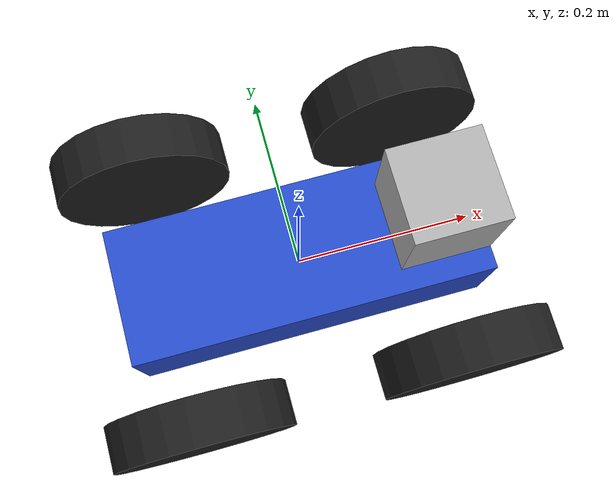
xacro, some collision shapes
<?xml version='1.0'?>

<robot name="my_robot" xmlns:xacro="http://www.ros.org/wiki/xacro">
  <xacro:include filename="$(find my_robot)/urdf/my_robot.gazebo"/>
  <link name="robot_footprint"></link>

  <joint name="robot_footprint_joint" type="fixed">
    <origin xyz="0 0 0" rpy="0 0 0" />
    <parent link="robot_footprint"/>
    <child link="chassis" />
  </joint>

  <joint type="continuous" name="left_wheelF_hinge">
    <origin xyz="0.15 0.15 0" rpy="0 0 0"/>
    <child link="left_wheelF"/>
    <parent link="chassis"/>
    <axis xyz="0 1 0" rpy="0 0 0"/>
    <limit effort="10000" velocity="1000"/>
    <dynamics damping="1.0" friction="1.0"/>
  </joint>
  <joint type="continuous" name="left_wheelR_hinge">
    <origin xyz="-0.15 0.15 0" rpy="0 0 0"/>
    <child link="left_wheelR"/>
    <parent link="chassis"/>
    <axis xyz="0 1 0" rpy="0 0 0"/>
    <limit effort="10000" velocity="1000"/>
    <dynamics damping="1.0" friction="1.0"/>
  </joint>

  <joint type="continuous" name="right_wheelF_hinge">
    <origin xyz="0.15 -0.15 0" rpy="0 0 0"/>
    <child link="right_wheelF"/>
    <parent link="chassis"/>
    <axis xyz="0 1 0" rpy="0 0 0"/>
    <limit effort="10000" velocity="1000"/>
    <dynamics damping="1.0" friction="1.0"/>
  </joint>
  <joint type="continuous" name="right_wheelR_hinge">
    <origin xyz="-0.15 -0.15 0" rpy="0 0 0"/>
    <child link="right_wheelR"/>
    <parent link="chassis"/>
    <axis xyz="0 1 0" rpy="0 0 0"/>
    <limit effort="10000" velocity="1000"/>
    <dynamics damping="1.0" friction="1.0"/>
  </joint>

  <joint type="fixed" name="camera_joint">
    <origin xyz="0.2 0 0" rpy="0 0 0"/>
    <child link="camera"/>
    <parent link="chassis"/>
    <axis xyz="0 1 0" rpy="0 0 0"/>
  </joint>

  <joint type="fixed" name="hokuyo_joint">
    <origin xyz="0.15 0 0.1" rpy="0 0 0"/>
    <child link="hokuyo"/>
    <parent link="chassis"/>
    <axis xyz="0 1 0" rpy="0 0 0"/>
  </joint>

  <link name='left_wheelF'>
    <inertial>
      <mass value="5"/>
      <origin xyz="0.0 0 0" rpy=" 0 0 0"/>
      <inertia
          ixx="0.1" ixy="0" ixz="0"
          iyy="0.1" iyz="0"
          izz="0.1"
      />
    </inertial>

    <collision name='left_wheelF_collision'>
      <origin xyz="0 0 0" rpy=" 0 1.5707 1.5707"/>
      <geometry>
        <cylinder radius="0.1" length="0.05"/>
      </geometry>
    </collision>

    <visual name='left_wheelF_visual'>
      <origin xyz="0 0 0" rpy=" 0 1.5707 1.5707"/>
      <geometry>
        <cylinder radius="0.1" length="0.05"/>
      </geometry>
    </visual>
  </link>

  <link name='left_wheelR'>
    <inertial>
      <mass value="5"/>
      <origin xyz="0.0 0 0" rpy=" 0 0 0"/>
      <inertia
          ixx="0.1" ixy="0" ixz="0"
          iyy="0.1" iyz="0"
          izz="0.1"
      />
    </inertial>

    <collision name='left_wheelR_collision'>
      <origin xyz="0 0 0" rpy=" 0 1.5707 1.5707"/>
      <geometry>
        <cylinder radius="0.1" length="0.05"/>
      </geometry>
    </collision>

    <visual name='left_wheelR_visual'>
      <origin xyz="0 0 0" rpy=" 0 1.5707 1.5707"/>
      <geometry>
        <cylinder radius="0.1" length="0.05"/>
      </geometry>
    </visual>
  </link>

  <link name='right_wheelF'>
    <inertial>
      <mass value="5"/>
      <origin xyz="0.0 0 0" rpy=" 0 0 0"/>
      <inertia
          ixx="0.1" ixy="0" ixz="0"
          iyy="0.1" iyz="0"
          izz="0.1"
      />
    </inertial>

    <collision name='right_wheelF_collision'>
      <origin xyz="0 0 0" rpy=" 0 1.5707 1.5707"/>
      <geometry>
        <cylinder radius="0.1" length="0.05"/>
      </geometry>
    </collision>

    <visual name='right_wheelF_visual'>
      <origin xyz="0 0 0" rpy=" 0 1.5707 1.5707"/>
      <geometry>
        <cylinder radius="0.1" length="0.05"/>
      </geometry>
    </visual>
  </link>
  <link name='right_wheelR'>
    <inertial>
      <mass value="5"/>
      <origin xyz="0.0 0 0" rpy=" 0 0 0"/>
      <inertia
          ixx="0.1" ixy="0" ixz="0"
          iyy="0.1" iyz="0"
          izz="0.1"
      />
    </inertial>

    <collision name='right_wheelR_collision'>
      <origin xyz="0 0 0" rpy=" 0 1.5707 1.5707"/>
      <geometry>
        <cylinder radius="0.1" length="0.05"/>
      </geometry>
    </collision>

    <visual name='right_wheelR_visual'>
      <origin xyz="0 0 0" rpy=" 0 1.5707 1.5707"/>
      <geometry>
        <cylinder radius="0.1" length="0.05"/>
      </geometry>
    </visual>
  </link>

  <link name='chassis'>
    <pose>0 0 0.1 0 0 0</pose>

    <inertial>
      <mass value="15.0"/>
      <origin xyz="0.0 0 0" rpy=" 0 0 0"/>
      <inertia
          ixx="0.1" ixy="0" ixz="0"
          iyy="0.1" iyz="0"
          izz="0.1"
      />
    </inertial>

    <collision name='collision'>
      <origin xyz="0 0 0" rpy=" 0 0 0"/>
      <geometry>
        <box size=".4 .15 .1"/>
      </geometry>
    </collision>

    <visual name='chassis_visual'>
      <origin xyz="0 0 0" rpy=" 0 0 0"/>
      <geometry>
        <box size=".4 .15 .1"/>
      </geometry>
    </visual>
  </link>

  <link name='camera'>
    <inertial>
      <mass value="0.1"/>
      <origin xyz="0.05 0.05 0.05" rpy=" 0 0 0"/>
      <inertia
          ixx="1e-6" ixy="0" ixz="0"
          iyy="1e-6" iyz="0"
          izz="1e-6"
      />
    </inertial>

    <collision name='camera_collision'>
      <origin xyz="0 0 0" rpy=" 0 0 0"/>
      <geometry>
        <box size="0.05 0.05 0.05"/>
      </geometry>
    </collision>

    <visual name='camera_visual'>
      <origin xyz="0 0 0" rpy=" 0 0 0"/>
      <geometry>
        <box size="0.05 0.05 0.05"/>
      </geometry>
    </visual>
  </link>

  <link name='hokuyo'>
    <inertial>
      <mass value="1e-5"/>
      <origin xyz="0 0 0" rpy=" 0 0 0"/>
      <inertia
          ixx="1e-6" ixy="0" ixz="0"
          iyy="1e-6" iyz="0"
          izz="1e-6"
      />
    </inertial>

    <collision name='hokuyo_collision'>
      <origin xyz="0 0 0" rpy=" 0 0 0"/>
      <geometry>
        <box size="0.1 0.1 0.1"/>
      </geometry>
    </collision>

    <visual name='hokuyo_visual'>
      <origin xyz="0 0 0" rpy=" 0 0 0"/>
      <geometry>
        <mesh filename="package://my_robot/meshes/hokuyo.dae"/>
      </geometry>
    </visual>
  </link>

  <gazebo reference="right_wheelF">
    <material>Gazebo/Black</material>
  </gazebo>
  <gazebo reference="right_wheelM">
    <material>Gazebo/Black</material>
  </gazebo>
  <gazebo reference="right_wheelR">
    <material>Gazebo/Black</material>
  </gazebo>
  <gazebo reference="left_wheelF">
    <material>Gazebo/Black</material>
  </gazebo>
  <gazebo reference="left_wheelM">
    <material>Gazebo/Black</material>
  </gazebo>
  <gazebo reference="left_wheelR">
    <material>Gazebo/Black</material>
  </gazebo>
  <gazebo reference="chassis">
    <material>Gazebo/Blue</material>
  </gazebo>
  <gazebo reference="camera">
    <material>Gazebo/Red</material>
  </gazebo>

</robot>
